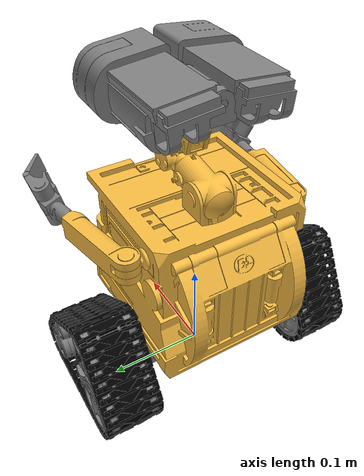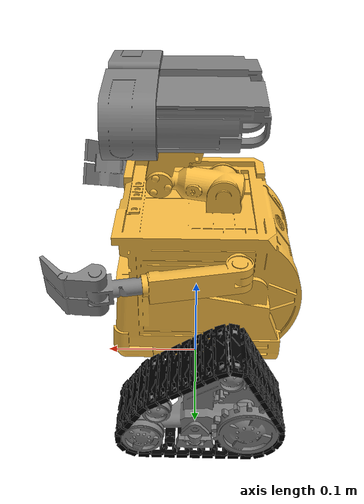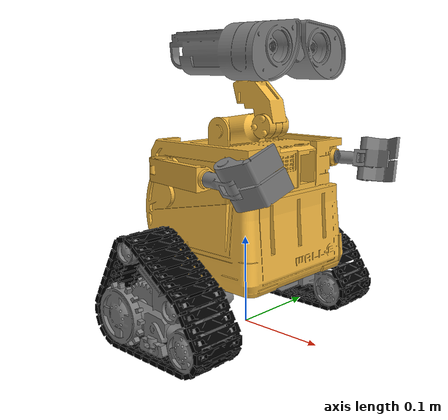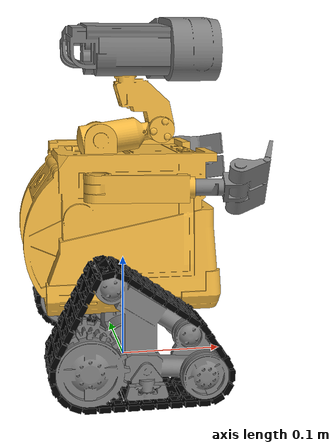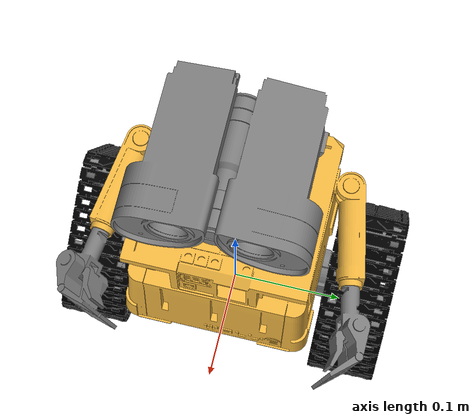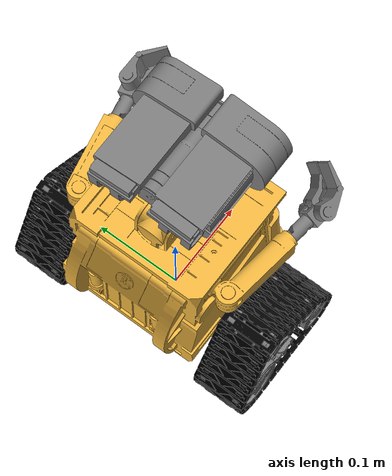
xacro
<?xml version="1.0" ?>
<robot name="wall_e" xmlns:xacro="http://ros.org/wiki/xacro">

  <material name="yellow">
      <color rgba="0.961 0.729 0.259 1.0"/>
  </material>

  <material name="gray">
    <color rgba="0.5 0.5 0.5 1.0"/>
  </material>

  <material name="black">
      <color rgba="0.0 0.0 0.0 1.0"/>
  </material>

  <!-- TODO collision/inertial components -->

  <link name="base_footprint"/>

  <joint name="base_joint" type="fixed">
    <parent link="base_footprint"/>
    <child link="base_link"/>
    <origin xyz="0.0 0.0 0.138887" rpy="0.0 0.0 0.0"/>
  </joint>

  <link name="base_link">
    <visual>
      <origin xyz="0.0 0.0 0.0" rpy="0.0 0.0 0.0"/>
      <geometry>
        <mesh filename="package://wall_e_description/meshes/body.stl" scale="0.001 0.001 0.001"/>
      </geometry>
      <material name="yellow"/>
    </visual>
  </link>

  <joint name="drivetrain_right_joint" type="fixed">
    <parent link="base_link"/>
    <child link="drivetrain_right_link"/>
    <origin xyz="0.0 0.0 0.0" rpy="0.0 0.0 0.0"/>
  </joint>

  <link name="drivetrain_right_link">
    <visual>
      <origin xyz="0.0 0.0 0.0" rpy="0.0 0.0 0.0"/>
      <geometry>
        <mesh filename="package://wall_e_description/meshes/drivetrain-right.stl" scale="0.001 0.001 0.001"/>
      </geometry>
      <material name="gray"/>
    </visual>
  </link>

  <joint name="drivetrain_left_joint" type="fixed">
    <parent link="base_link"/>
    <child link="drivetrain_left_link"/>
    <origin xyz="0.0 0.0 0.0" rpy="0.0 0.0 0.0"/>
  </joint>

  <link name="drivetrain_left_link">
    <visual>
      <origin xyz="0.0 0.0 0.0" rpy="0.0 0.0 0.0"/>
      <geometry>
        <mesh filename="package://wall_e_description/meshes/drivetrain-left.stl" scale="0.001 0.001 0.001"/>
      </geometry>
      <material name="gray"/>
    </visual>
  </link>

  <joint name="tread_right_joint" type="fixed">
    <parent link="drivetrain_right_link"/>
    <child link="tread_right_link"/>
    <origin xyz="0.0 0.0 0.0" rpy="0.0 0.0 0.0"/>
  </joint>

  <link name="tread_right_link">
    <visual>
      <origin xyz="0.0 0.0 0.0" rpy="0.0 0.0 0.0"/>
      <geometry>
        <mesh filename="package://wall_e_description/meshes/tread-right.stl" scale="0.001 0.001 0.001"/>
      </geometry>
      <material name="black"/>
    </visual>
  </link>

  <joint name="tread_left_joint" type="fixed">
    <parent link="drivetrain_left_link"/>
    <child link="tread_left_link"/>
    <origin xyz="0.0 0.0 0.0" rpy="0.0 0.0 0.0"/>
  </joint>

  <link name="tread_left_link">
    <visual>
      <origin xyz="0.0 0.0 0.0" rpy="0.0 0.0 0.0"/>
      <geometry>
        <mesh filename="package://wall_e_description/meshes/tread-left.stl" scale="0.001 0.001 0.001"/>
      </geometry>
      <material name="black"/>
    </visual>
  </link>

  <joint name="wheel_right_joint" type="continuous">
    <parent link="drivetrain_right_link"/>
    <child link="wheel_right_link"/>
    <origin xyz="-0.049187 -0.1318 -0.103877" rpy="0.0 0.0 0.0"/>
    <axis xyz="0 1 0"/>
  </joint>

  <link name="wheel_right_link">
    <visual>
      <origin xyz="0.0 0.0 0.0" rpy="0.0 0.0 0.0"/>
      <geometry>
        <mesh filename="package://wall_e_description/meshes/wheel-right.stl" scale="0.001 0.001 0.001"/>
      </geometry>
      <material name="gray"/>
    </visual>
  </link>

  <joint name="wheel_left_joint" type="continuous">
    <parent link="drivetrain_left_link"/>
    <child link="wheel_left_link"/>
    <origin xyz="-0.049187 0.1318 -0.103877" rpy="0.0 0.0 0.0"/>
    <axis xyz="0 1 0"/>
  </joint>

  <link name="wheel_left_link">
    <visual>
      <origin xyz="0.0 0.0 0.0" rpy="0.0 0.0 0.0"/>
      <geometry>
        <mesh filename="package://wall_e_description/meshes/wheel-left.stl" scale="0.001 0.001 0.001"/>
      </geometry>
      <material name="gray"/>
    </visual>
  </link>

  <joint name="arm_right_joint" type="revolute">
    <parent link="base_link"/>
    <child link="arm_right_link"/>
    <origin xyz="-0.036105 -0.0725 0.045529" rpy="0.0 0.0 0.0"/>
    <axis xyz="0 1 0"/>
    <limit effort="1000.0" lower="-4.0" upper="0.7" velocity="1000.0"/> <!--TODO update for actual limits-->
  </joint>

  <link name="arm_right_link">
    <visual>
      <origin xyz="0.0 0.0 0.0" rpy="0.0 0.0 0.0"/>
      <geometry>
        <mesh filename="package://wall_e_description/meshes/arm-right.stl" scale="0.001 0.001 0.001"/>
      </geometry>
      <material name="yellow"/>
    </visual>
  </link>

  <joint name="arm_left_joint" type="revolute">
    <parent link="base_link"/>
    <child link="arm_left_link"/>
    <origin xyz="-0.036105 0.07275 0.045547" rpy="0.0 0.0 0.0"/>
    <axis xyz="0 1 0"/>
    <limit effort="1000.0" lower="-4.0" upper="0.7" velocity="1000.0"/> <!--TODO update for actual limits-->
  </joint>

  <link name="arm_left_link">
    <visual>
      <origin xyz="0.0 0.0 0.0" rpy="0.0 0.0 0.0"/>
      <geometry>
        <mesh filename="package://wall_e_description/meshes/arm-left.stl" scale="0.001 0.001 0.001"/>
      </geometry>
      <material name="yellow"/>
    </visual>
  </link>

  <joint name="hand_right_joint" type="fixed">
    <parent link="arm_right_link"/>
    <child link="hand_right_link"/>
    <origin xyz="0.135 -0.026 0.0" rpy="0.0 0.0 0.0"/>
  </joint>

  <link name="hand_right_link">
    <visual>
      <origin xyz="0.0 0.0 0.0" rpy="0.0 0.0 0.0"/>
      <geometry>
        <mesh filename="package://wall_e_description/meshes/hand-right.stl" scale="0.001 0.001 0.001"/>
      </geometry>
      <material name="gray"/>
    </visual>
  </link>

  <joint name="hand_left_joint" type="fixed">
    <parent link="arm_left_link"/>
    <child link="hand_left_link"/>
    <origin xyz="0.135 0.041 0.0" rpy="0.0 0.0 0.0"/>
  </joint>

  <link name="hand_left_link">
    <visual>
      <origin xyz="0.0 0.0 0.0" rpy="0.0 0.0 0.0"/>
      <geometry>
        <mesh filename="package://wall_e_description/meshes/hand-left.stl" scale="0.001 0.001 0.001"/>
      </geometry>
      <material name="gray"/>
    </visual>
  </link>

  <joint name="neck_bottom_joint" type="revolute">
    <parent link="base_link"/>
    <child link="neck_bottom_link"/>
    <origin xyz="-0.023342 0.0 0.080" rpy="0.0 0.0 0.0"/>
    <axis xyz="0 1 0"/>
    <limit effort="1000.0" lower="-0.5" upper="0.1" velocity="1000.0"/> <!--TODO update for actual limits-->
  </joint>

  <link name="neck_bottom_link">
    <visual>
      <origin xyz="0.0 0.0 0.0" rpy="0.0 0.0 0.0"/>
      <geometry>
        <mesh filename="package://wall_e_description/meshes/neck-bottom.stl" scale="0.001 0.001 0.001"/>
      </geometry>
      <material name="yellow"/>
    </visual>
  </link>

  <joint name="neck_top_joint" type="revolute">
    <parent link="neck_bottom_link"/>
    <child link="neck_top_link"/>
    <origin xyz="0.059852 0.0 0.008848" rpy="0.0 0.0 0.0"/>
    <axis xyz="0 1 0"/>
    <limit effort="1000.0" lower="-0.2" upper="1.5" velocity="1000.0"/> <!--TODO update for actual limits-->
  </joint>

  <link name="neck_top_link">
    <visual>
      <origin xyz="0. 0.0 0.0" rpy="0.0 0.0 0.0"/>
      <geometry>
        <mesh filename="package://wall_e_description/meshes/neck-top.stl" scale="0.001 0.001 0.001"/>
      </geometry>
      <material name="yellow"/>
    </visual>
  </link>

  <joint name="head_center_joint" type="continuous"> <!--TODO make a limited joint-->
    <parent link="neck_top_link"/>
    <child link="head_center_link"/>
    <origin xyz="-0.033445 0.0 0.053725" rpy="0.0 0.0 0.0"/>
    <axis xyz="0 0 1"/>
  </joint>

  <link name="head_center_link">
    <visual>
      <origin xyz="0.0 0.0 0.0" rpy="0.0 0.0 0.0"/>
      <geometry>
        <mesh filename="package://wall_e_description/meshes/head-center.stl" scale="0.001 0.001 0.001"/>
      </geometry>
      <material name="gray"/>
    </visual>
  </link>

  <joint name="eye_right_joint" type="revolute">
    <parent link="head_center_link"/>
    <child link="eye_right_link"/>
    <origin xyz="0.075654 0.0 0.028992" rpy="0.0 0.0 0.0"/>
    <axis xyz="1 0 0"/>
    <limit effort="1000.0" lower="-0.1" upper="0.3" velocity="1000.0"/> <!--TODO update for actual limits-->
  </joint>

  <link name="eye_right_link">
    <visual>
      <origin xyz="0.0 0.0 0.0" rpy="0.0 0.0 0.0"/>
      <geometry>
        <mesh filename="package://wall_e_description/meshes/eye-right.stl" scale="0.001 0.001 0.001"/>
      </geometry>
      <material name="gray"/>
    </visual>
  </link>

  <joint name="eye_left_joint" type="revolute">
    <parent link="head_center_link"/>
    <child link="eye_left_link"/>
    <origin xyz="0.075364 0.0 0.0289895" rpy="0.0 0.0 0.0"/>
    <axis xyz="1 0 0"/>
    <limit effort="1000.0" lower="-0.3" upper="0.1" velocity="1000.0"/> <!--TODO update for actual limits-->
  </joint>

  <link name="eye_left_link">
    <visual>
      <origin xyz="0.0 0.0 0.0" rpy="0.0 0.0 0.0"/>
      <geometry>
        <mesh filename="package://wall_e_description/meshes/eye-left.stl" scale="0.001 0.001 0.001"/>
      </geometry>
      <material name="gray"/>
    </visual>
  </link>

</robot>
